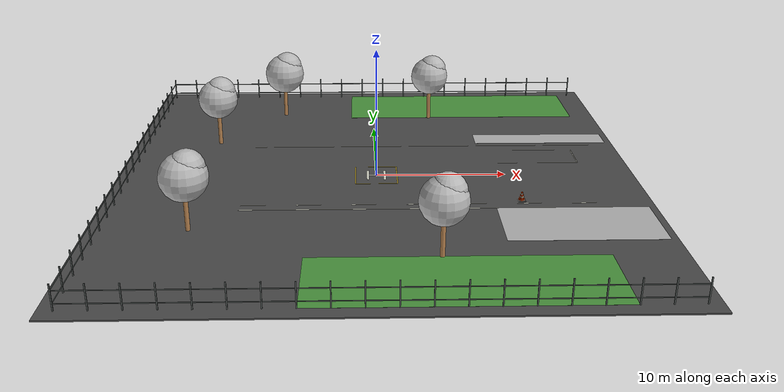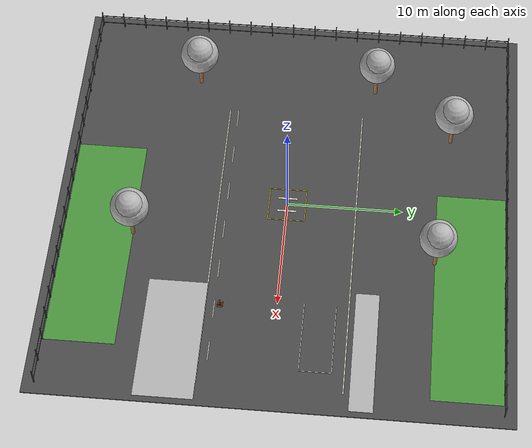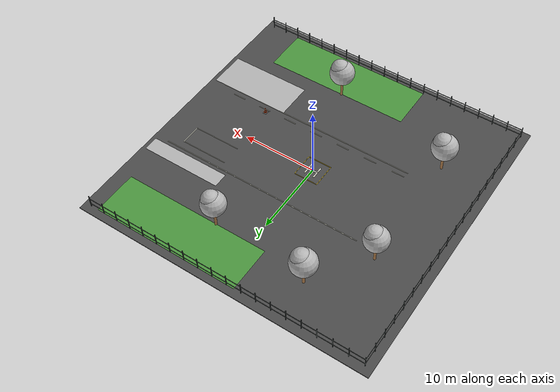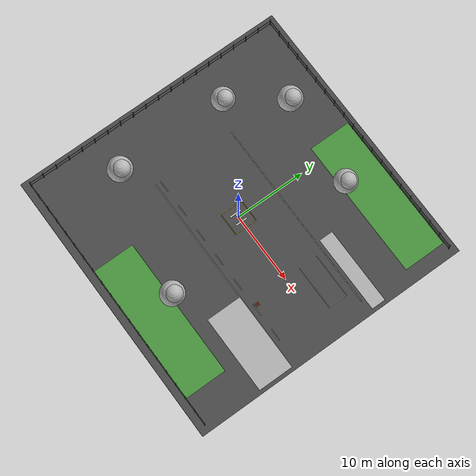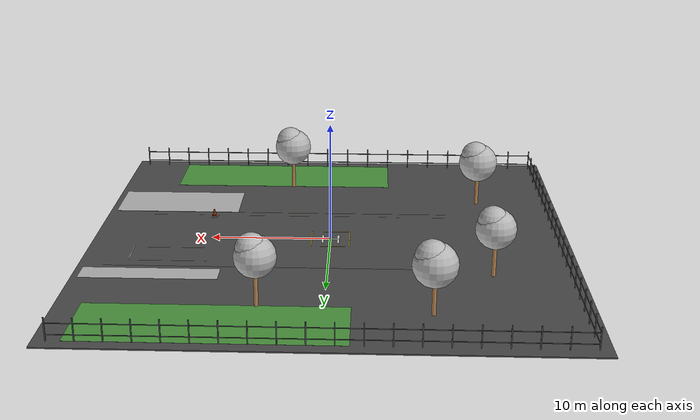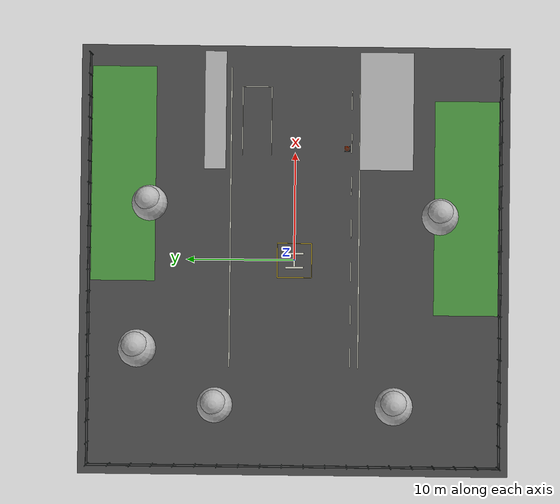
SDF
<sdf version="1.5">
 <world name="default">
  <include><uri>model://sun</uri></include>
  <model name="yard_ground">
   <static>true</static>
   <link name="structure">
    <visual name="solid_ground">
     <pose>0 0 -0.047 0 0 0</pose>
     <geometry><box><size>40 40 0.1</size></box></geometry>
     <material>
      <script>
       <uri>file:///home/fxxk/px4_agent/scene/materials/scripts</uri>
       <uri>file:///home/fxxk/px4_agent/scene/materials/textures</uri>
       <name>Yard/asphalt</name>
      </script>
     </material>
    </visual>
    <collision name="solid_ground_collision">
     <pose>0 0 -0.047 0 0 0</pose>
     <geometry><box><size>40 40 0.1</size></box></geometry>
     <surface><friction><ode><mu>1.0</mu><mu2>1.0</mu2></ode></friction></surface>
    </collision>
    <visual name="west_lawn">
     <pose>-12.5 0 0.0032 0 0 0</pose>
     <geometry><plane><normal>0 0 1</normal><size>15 38</size></plane></geometry>
     <cast_shadows>false</cast_shadows>
     <material>
      <script>
       <uri>file:///home/fxxk/px4_agent/scene/materials/scripts</uri>
       <uri>file:///home/fxxk/px4_agent/scene/materials/textures</uri>
       <name>Yard/grass</name>
      </script>
     </material>
    </visual>
    <visual name="north_lawn">
     <pose>8 16 0.0032 0 0 0</pose>
     <geometry><plane><normal>0 0 1</normal><size>20 6</size></plane></geometry>
     <cast_shadows>false</cast_shadows>
     <material>
      <script>
       <uri>file:///home/fxxk/px4_agent/scene/materials/scripts</uri>
       <uri>file:///home/fxxk/px4_agent/scene/materials/textures</uri>
       <name>Yard/grass</name>
      </script>
     </material>
    </visual>
    <visual name="south_lawn">
     <pose>5 -16 0.0032 0 0 0</pose>
     <geometry><plane><normal>0 0 1</normal><size>20 6</size></plane></geometry>
     <cast_shadows>false</cast_shadows>
     <material>
      <script>
       <uri>file:///home/fxxk/px4_agent/scene/materials/scripts</uri>
       <uri>file:///home/fxxk/px4_agent/scene/materials/textures</uri>
       <name>Yard/grass</name>
      </script>
     </material>
    </visual>
    <visual name="warehouse_apron">
     <pose>14 -8.5 0.0032 0 0 0</pose>
     <geometry><plane><normal>0 0 1</normal><size>11 5</size></plane></geometry>
     <cast_shadows>false</cast_shadows>
     <material>
      <script>
       <uri>file:///home/fxxk/px4_agent/scene/materials/scripts</uri>
       <uri>file:///home/fxxk/px4_agent/scene/materials/textures</uri>
       <name>Yard/concrete</name>
      </script>
     </material>
    </visual>
    <visual name="office_walkway">
     <pose>14 7.5 0.0032 0 0 0</pose>
     <geometry><plane><normal>0 0 1</normal><size>11 2</size></plane></geometry>
     <cast_shadows>false</cast_shadows>
     <material>
      <script>
       <uri>file:///home/fxxk/px4_agent/scene/materials/scripts</uri>
       <uri>file:///home/fxxk/px4_agent/scene/materials/textures</uri>
       <name>Yard/concrete</name>
      </script>
     </material>
    </visual>
    <visual name="road_edge_0">
     <pose>4 -6 0.0033 0 0 0</pose>
     <geometry><box><size>28 0.1 0.0001</size></box></geometry>
     <cast_shadows>false</cast_shadows>
     <material>
      <ambient>0.85 0.85 0.79 1</ambient>
      <diffuse>0.85 0.85 0.79 1</diffuse>
      <specular>0.04 0.04 0.04 1</specular>
     </material>
    </visual>
    <visual name="road_edge_1">
     <pose>4 6 0.0033 0 0 0</pose>
     <geometry><box><size>28 0.1 0.0001</size></box></geometry>
     <cast_shadows>false</cast_shadows>
     <material>
      <ambient>0.85 0.85 0.79 1</ambient>
      <diffuse>0.85 0.85 0.79 1</diffuse>
      <specular>0.04 0.04 0.04 1</specular>
     </material>
    </visual>
    <visual name="lane_dash_0">
     <pose>-9 -5.25 0.0033 0 0 0</pose>
     <geometry><box><size>1.8 0.09 0.0001</size></box></geometry>
     <cast_shadows>false</cast_shadows>
     <material>
      <ambient>0.85 0.85 0.79 1</ambient>
      <diffuse>0.85 0.85 0.79 1</diffuse>
      <specular>0.04 0.04 0.04 1</specular>
     </material>
    </visual>
    <visual name="lane_dash_1">
     <pose>-5 -5.25 0.0033 0 0 0</pose>
     <geometry><box><size>1.8 0.09 0.0001</size></box></geometry>
     <cast_shadows>false</cast_shadows>
     <material>
      <ambient>0.85 0.85 0.79 1</ambient>
      <diffuse>0.85 0.85 0.79 1</diffuse>
      <specular>0.04 0.04 0.04 1</specular>
     </material>
    </visual>
    <visual name="lane_dash_2">
     <pose>-1 -5.25 0.0033 0 0 0</pose>
     <geometry><box><size>1.8 0.09 0.0001</size></box></geometry>
     <cast_shadows>false</cast_shadows>
     <material>
      <ambient>0.85 0.85 0.79 1</ambient>
      <diffuse>0.85 0.85 0.79 1</diffuse>
      <specular>0.04 0.04 0.04 1</specular>
     </material>
    </visual>
    <visual name="lane_dash_3">
     <pose>3 -5.25 0.0033 0 0 0</pose>
     <geometry><box><size>1.8 0.09 0.0001</size></box></geometry>
     <cast_shadows>false</cast_shadows>
     <material>
      <ambient>0.85 0.85 0.79 1</ambient>
      <diffuse>0.85 0.85 0.79 1</diffuse>
      <specular>0.04 0.04 0.04 1</specular>
     </material>
    </visual>
    <visual name="lane_dash_4">
     <pose>7 -5.25 0.0033 0 0 0</pose>
     <geometry><box><size>1.8 0.09 0.0001</size></box></geometry>
     <cast_shadows>false</cast_shadows>
     <material>
      <ambient>0.85 0.85 0.79 1</ambient>
      <diffuse>0.85 0.85 0.79 1</diffuse>
      <specular>0.04 0.04 0.04 1</specular>
     </material>
    </visual>
    <visual name="lane_dash_5">
     <pose>11 -5.25 0.0033 0 0 0</pose>
     <geometry><box><size>1.8 0.09 0.0001</size></box></geometry>
     <cast_shadows>false</cast_shadows>
     <material>
      <ambient>0.85 0.85 0.79 1</ambient>
      <diffuse>0.85 0.85 0.79 1</diffuse>
      <specular>0.04 0.04 0.04 1</specular>
     </material>
    </visual>
    <visual name="lane_dash_6">
     <pose>15 -5.25 0.0033 0 0 0</pose>
     <geometry><box><size>1.8 0.09 0.0001</size></box></geometry>
     <cast_shadows>false</cast_shadows>
     <material>
      <ambient>0.85 0.85 0.79 1</ambient>
      <diffuse>0.85 0.85 0.79 1</diffuse>
      <specular>0.04 0.04 0.04 1</specular>
     </material>
    </visual>
    <visual name="parking_line_0">
     <pose>13 2.25 0.0033 0 0 0</pose>
     <geometry><box><size>6.4 0.07 0.0001</size></box></geometry>
     <cast_shadows>false</cast_shadows>
     <material>
      <ambient>0.85 0.85 0.79 1</ambient>
      <diffuse>0.85 0.85 0.79 1</diffuse>
      <specular>0.04 0.04 0.04 1</specular>
     </material>
    </visual>
    <visual name="parking_line_1">
     <pose>13 4.95 0.0033 0 0 0</pose>
     <geometry><box><size>6.4 0.07 0.0001</size></box></geometry>
     <cast_shadows>false</cast_shadows>
     <material>
      <ambient>0.85 0.85 0.79 1</ambient>
      <diffuse>0.85 0.85 0.79 1</diffuse>
      <specular>0.04 0.04 0.04 1</specular>
     </material>
    </visual>
    <visual name="parking_back">
     <pose>16.2 3.6 0.0033 0 0 0</pose>
     <geometry><box><size>0.07 2.77 0.0001</size></box></geometry>
     <cast_shadows>false</cast_shadows>
     <material>
      <ambient>0.85 0.85 0.79 1</ambient>
      <diffuse>0.85 0.85 0.79 1</diffuse>
      <specular>0.04 0.04 0.04 1</specular>
     </material>
    </visual>
    <visual name="h_left">
     <pose>-0.65 0 0.0033 0 0 0</pose>
     <geometry><box><size>0.18 1.7 0.0001</size></box></geometry>
     <cast_shadows>false</cast_shadows>
     <material>
      <ambient>0.85 0.85 0.79 1</ambient>
      <diffuse>0.85 0.85 0.79 1</diffuse>
      <specular>0.04 0.04 0.04 1</specular>
     </material>
    </visual>
    <visual name="h_right">
     <pose>0.65 0 0.0033 0 0 0</pose>
     <geometry><box><size>0.18 1.7 0.0001</size></box></geometry>
     <cast_shadows>false</cast_shadows>
     <material>
      <ambient>0.85 0.85 0.79 1</ambient>
      <diffuse>0.85 0.85 0.79 1</diffuse>
      <specular>0.04 0.04 0.04 1</specular>
     </material>
    </visual>
    <visual name="h_middle">
     <pose>0 0 0.0033 0 0 0</pose>
     <geometry><box><size>1.4 0.18 0.0001</size></box></geometry>
     <cast_shadows>false</cast_shadows>
     <material>
      <ambient>0.85 0.85 0.79 1</ambient>
      <diffuse>0.85 0.85 0.79 1</diffuse>
      <specular>0.04 0.04 0.04 1</specular>
     </material>
    </visual>
    <visual name="pad_border_0">
     <pose>0 -1.6 0.0033 0 0 0</pose>
     <geometry><box><size>3.2 0.08 0.0001</size></box></geometry>
     <cast_shadows>false</cast_shadows>
     <material>
      <ambient>0.82 0.7 0.18 1</ambient>
      <diffuse>0.82 0.7 0.18 1</diffuse>
      <specular>0.04 0.04 0.04 1</specular>
     </material>
    </visual>
    <visual name="pad_border_1">
     <pose>0 1.6 0.0033 0 0 0</pose>
     <geometry><box><size>3.2 0.08 0.0001</size></box></geometry>
     <cast_shadows>false</cast_shadows>
     <material>
      <ambient>0.82 0.7 0.18 1</ambient>
      <diffuse>0.82 0.7 0.18 1</diffuse>
      <specular>0.04 0.04 0.04 1</specular>
     </material>
    </visual>
    <visual name="pad_border_2">
     <pose>-1.6 0 0.0033 0 0 0</pose>
     <geometry><box><size>0.08 3.2 0.0001</size></box></geometry>
     <cast_shadows>false</cast_shadows>
     <material>
      <ambient>0.82 0.7 0.18 1</ambient>
      <diffuse>0.82 0.7 0.18 1</diffuse>
      <specular>0.04 0.04 0.04 1</specular>
     </material>
    </visual>
    <visual name="pad_border_3">
     <pose>1.6 0 0.0033 0 0 0</pose>
     <geometry><box><size>0.08 3.2 0.0001</size></box></geometry>
     <cast_shadows>false</cast_shadows>
     <material>
      <ambient>0.82 0.7 0.18 1</ambient>
      <diffuse>0.82 0.7 0.18 1</diffuse>
      <specular>0.04 0.04 0.04 1</specular>
     </material>
    </visual>
   </link>
  </model>
  <model name="traffic_cone_1">
   <static>true</static>
   <pose>10.5 -4.8 0.003 0 0 0</pose>
   <link name="structure">
    <visual name="rubber_base">
     <pose>0 0 0.0325 0 0 0</pose>
     <geometry><box><size>0.54 0.54 0.065</size></box></geometry>
     <material>
      <ambient>0.07 0.07 0.065 1</ambient>
      <diffuse>0.07 0.07 0.065 1</diffuse>
      <specular>0.04 0.04 0.04 1</specular>
     </material>
    </visual>
    <collision name="rubber_base_collision">
     <pose>0 0 0.0325 0 0 0</pose>
     <geometry><box><size>0.54 0.54 0.065</size></box></geometry>
     <surface><friction><ode><mu>1.0</mu><mu2>1.0</mu2></ode></friction></surface>
    </collision>
    <visual name="cone_slice_0">
     <pose>0 0 0.09 0 0 0</pose>
     <geometry><cylinder><radius>0.225</radius><length>0.056</length></cylinder></geometry>
     <material>
      <ambient>0.92 0.25 0.025 1</ambient>
      <diffuse>0.92 0.25 0.025 1</diffuse>
      <specular>0.04 0.04 0.04 1</specular>
     </material>
    </visual>
    <visual name="cone_slice_1">
     <pose>0 0 0.143 0 0 0</pose>
     <geometry><cylinder><radius>0.20900000000000002</radius><length>0.056</length></cylinder></geometry>
     <material>
      <ambient>0.92 0.25 0.025 1</ambient>
      <diffuse>0.92 0.25 0.025 1</diffuse>
      <specular>0.04 0.04 0.04 1</specular>
     </material>
    </visual>
    <visual name="cone_slice_2">
     <pose>0 0 0.196 0 0 0</pose>
     <geometry><cylinder><radius>0.193</radius><length>0.056</length></cylinder></geometry>
     <material>
      <ambient>0.92 0.25 0.025 1</ambient>
      <diffuse>0.92 0.25 0.025 1</diffuse>
      <specular>0.04 0.04 0.04 1</specular>
     </material>
    </visual>
    <visual name="cone_slice_3">
     <pose>0 0 0.249 0 0 0</pose>
     <geometry><cylinder><radius>0.177</radius><length>0.056</length></cylinder></geometry>
     <material>
      <ambient>0.92 0.25 0.025 1</ambient>
      <diffuse>0.92 0.25 0.025 1</diffuse>
      <specular>0.04 0.04 0.04 1</specular>
     </material>
    </visual>
    <visual name="cone_slice_4">
     <pose>0 0 0.302 0 0 0</pose>
     <geometry><cylinder><radius>0.161</radius><length>0.056</length></cylinder></geometry>
     <material>
      <ambient>0.88 0.87 0.79 1</ambient>
      <diffuse>0.88 0.87 0.79 1</diffuse>
      <specular>0.04 0.04 0.04 1</specular>
     </material>
    </visual>
    <visual name="cone_slice_5">
     <pose>0 0 0.355 0 0 0</pose>
     <geometry><cylinder><radius>0.14500000000000002</radius><length>0.056</length></cylinder></geometry>
     <material>
      <ambient>0.88 0.87 0.79 1</ambient>
      <diffuse>0.88 0.87 0.79 1</diffuse>
      <specular>0.04 0.04 0.04 1</specular>
     </material>
    </visual>
    <visual name="cone_slice_6">
     <pose>0 0 0.408 0 0 0</pose>
     <geometry><cylinder><radius>0.129</radius><length>0.056</length></cylinder></geometry>
     <material>
      <ambient>0.92 0.25 0.025 1</ambient>
      <diffuse>0.92 0.25 0.025 1</diffuse>
      <specular>0.04 0.04 0.04 1</specular>
     </material>
    </visual>
    <visual name="cone_slice_7">
     <pose>0 0 0.461 0 0 0</pose>
     <geometry><cylinder><radius>0.113</radius><length>0.056</length></cylinder></geometry>
     <material>
      <ambient>0.92 0.25 0.025 1</ambient>
      <diffuse>0.92 0.25 0.025 1</diffuse>
      <specular>0.04 0.04 0.04 1</specular>
     </material>
    </visual>
    <visual name="cone_slice_8">
     <pose>0 0 0.514 0 0 0</pose>
     <geometry><cylinder><radius>0.097</radius><length>0.056</length></cylinder></geometry>
     <material>
      <ambient>0.88 0.87 0.79 1</ambient>
      <diffuse>0.88 0.87 0.79 1</diffuse>
      <specular>0.04 0.04 0.04 1</specular>
     </material>
    </visual>
    <visual name="cone_slice_9">
     <pose>0 0 0.567 0 0 0</pose>
     <geometry><cylinder><radius>0.08099999999999999</radius><length>0.056</length></cylinder></geometry>
     <material>
      <ambient>0.88 0.87 0.79 1</ambient>
      <diffuse>0.88 0.87 0.79 1</diffuse>
      <specular>0.04 0.04 0.04 1</specular>
     </material>
    </visual>
    <visual name="cone_slice_10">
     <pose>0 0 0.62 0 0 0</pose>
     <geometry><cylinder><radius>0.065</radius><length>0.056</length></cylinder></geometry>
     <material>
      <ambient>0.92 0.25 0.025 1</ambient>
      <diffuse>0.92 0.25 0.025 1</diffuse>
      <specular>0.04 0.04 0.04 1</specular>
     </material>
    </visual>
    <visual name="cone_slice_11">
     <pose>0 0 0.673 0 0 0</pose>
     <geometry><cylinder><radius>0.049000000000000016</radius><length>0.056</length></cylinder></geometry>
     <material>
      <ambient>0.92 0.25 0.025 1</ambient>
      <diffuse>0.92 0.25 0.025 1</diffuse>
      <specular>0.04 0.04 0.04 1</specular>
     </material>
    </visual>
    <collision name="cone_body_collision">
     <pose>0 0 .39 0 0 0</pose>
     <geometry><cylinder><radius>0.23</radius><length>0.73</length></cylinder></geometry>
    </collision>
   </link>
  </model>
  <model name="yard_tree_1">
   <static>true</static>
   <pose>-13 -9 0.003 0 0 0</pose>
   <link name="structure">
    <visual name="trunk">
     <pose>0 0 1.6 0 0 0</pose>
     <geometry><cylinder><radius>0.16</radius><length>3.2</length></cylinder></geometry>
     <material>
      <script>
       <uri>file:///home/fxxk/px4_agent/scene/materials/scripts</uri>
       <uri>file:///home/fxxk/px4_agent/scene/materials/textures</uri>
       <name>Yard/wood</name>
      </script>
     </material>
    </visual>
    <collision name="trunk_collision">
     <pose>0 0 1.6 0 0 0</pose>
     <geometry><cylinder><radius>0.16</radius><length>3.2</length></cylinder></geometry>
     <surface><friction><ode><mu>1.0</mu><mu2>1.0</mu2></ode></friction></surface>
    </collision>
    <visual name="crown">
     <pose>0 0 3.95 0 0 0</pose>
     <geometry><sphere><radius>1.7</radius></sphere></geometry>
     <material>
      <script>
       <uri>file:///home/fxxk/px4_agent/scene/materials/scripts</uri>
       <uri>file:///home/fxxk/px4_agent/scene/materials/textures</uri>
       <name>Yard/foliage</name>
      </script>
     </material>
    </visual>
    <collision name="crown_collision">
     <pose>0 0 3.95 0 0 0</pose>
     <geometry><sphere><radius>1.7</radius></sphere></geometry>
     <surface><friction><ode><mu>1.0</mu><mu2>1.0</mu2></ode></friction></surface>
    </collision>
    <visual name="crown_top">
     <pose>0.25 0.06 4.6 0 0 0</pose>
     <geometry><sphere><radius>1.275</radius></sphere></geometry>
     <material>
      <script>
       <uri>file:///home/fxxk/px4_agent/scene/materials/scripts</uri>
       <uri>file:///home/fxxk/px4_agent/scene/materials/textures</uri>
       <name>Yard/foliage</name>
      </script>
     </material>
    </visual>
   </link>
  </model>
  <model name="yard_tree_2">
   <static>true</static>
   <pose>-13 7 0.003 0 0 0</pose>
   <link name="structure">
    <visual name="trunk">
     <pose>0 0 1.6 0 0 0</pose>
     <geometry><cylinder><radius>0.16</radius><length>3.2</length></cylinder></geometry>
     <material>
      <script>
       <uri>file:///home/fxxk/px4_agent/scene/materials/scripts</uri>
       <uri>file:///home/fxxk/px4_agent/scene/materials/textures</uri>
       <name>Yard/wood</name>
      </script>
     </material>
    </visual>
    <collision name="trunk_collision">
     <pose>0 0 1.6 0 0 0</pose>
     <geometry><cylinder><radius>0.16</radius><length>3.2</length></cylinder></geometry>
     <surface><friction><ode><mu>1.0</mu><mu2>1.0</mu2></ode></friction></surface>
    </collision>
    <visual name="crown">
     <pose>0 0 3.95 0 0 0</pose>
     <geometry><sphere><radius>1.6</radius></sphere></geometry>
     <material>
      <script>
       <uri>file:///home/fxxk/px4_agent/scene/materials/scripts</uri>
       <uri>file:///home/fxxk/px4_agent/scene/materials/textures</uri>
       <name>Yard/foliage</name>
      </script>
     </material>
    </visual>
    <collision name="crown_collision">
     <pose>0 0 3.95 0 0 0</pose>
     <geometry><sphere><radius>1.6</radius></sphere></geometry>
     <surface><friction><ode><mu>1.0</mu><mu2>1.0</mu2></ode></friction></surface>
    </collision>
    <visual name="crown_top">
     <pose>0.25 0.06 4.6 0 0 0</pose>
     <geometry><sphere><radius>1.2000000000000002</radius></sphere></geometry>
     <material>
      <script>
       <uri>file:///home/fxxk/px4_agent/scene/materials/scripts</uri>
       <uri>file:///home/fxxk/px4_agent/scene/materials/textures</uri>
       <name>Yard/foliage</name>
      </script>
     </material>
    </visual>
   </link>
  </model>
  <model name="yard_tree_3">
   <static>true</static>
   <pose>-8 14 0.003 0 0 0</pose>
   <link name="structure">
    <visual name="trunk">
     <pose>0 0 1.6 0 0 0</pose>
     <geometry><cylinder><radius>0.16</radius><length>3.2</length></cylinder></geometry>
     <material>
      <script>
       <uri>file:///home/fxxk/px4_agent/scene/materials/scripts</uri>
       <uri>file:///home/fxxk/px4_agent/scene/materials/textures</uri>
       <name>Yard/wood</name>
      </script>
     </material>
    </visual>
    <collision name="trunk_collision">
     <pose>0 0 1.6 0 0 0</pose>
     <geometry><cylinder><radius>0.16</radius><length>3.2</length></cylinder></geometry>
     <surface><friction><ode><mu>1.0</mu><mu2>1.0</mu2></ode></friction></surface>
    </collision>
    <visual name="crown">
     <pose>0 0 3.95 0 0 0</pose>
     <geometry><sphere><radius>1.7</radius></sphere></geometry>
     <material>
      <script>
       <uri>file:///home/fxxk/px4_agent/scene/materials/scripts</uri>
       <uri>file:///home/fxxk/px4_agent/scene/materials/textures</uri>
       <name>Yard/foliage</name>
      </script>
     </material>
    </visual>
    <collision name="crown_collision">
     <pose>0 0 3.95 0 0 0</pose>
     <geometry><sphere><radius>1.7</radius></sphere></geometry>
     <surface><friction><ode><mu>1.0</mu><mu2>1.0</mu2></ode></friction></surface>
    </collision>
    <visual name="crown_top">
     <pose>0.25 0.06 4.6 0 0 0</pose>
     <geometry><sphere><radius>1.275</radius></sphere></geometry>
     <material>
      <script>
       <uri>file:///home/fxxk/px4_agent/scene/materials/scripts</uri>
       <uri>file:///home/fxxk/px4_agent/scene/materials/textures</uri>
       <name>Yard/foliage</name>
      </script>
     </material>
    </visual>
   </link>
  </model>
  <model name="yard_tree_4">
   <static>true</static>
   <pose>5 13 0.003 0 0 0</pose>
   <link name="structure">
    <visual name="trunk">
     <pose>0 0 1.6 0 0 0</pose>
     <geometry><cylinder><radius>0.16</radius><length>3.2</length></cylinder></geometry>
     <material>
      <script>
       <uri>file:///home/fxxk/px4_agent/scene/materials/scripts</uri>
       <uri>file:///home/fxxk/px4_agent/scene/materials/textures</uri>
       <name>Yard/wood</name>
      </script>
     </material>
    </visual>
    <collision name="trunk_collision">
     <pose>0 0 1.6 0 0 0</pose>
     <geometry><cylinder><radius>0.16</radius><length>3.2</length></cylinder></geometry>
     <surface><friction><ode><mu>1.0</mu><mu2>1.0</mu2></ode></friction></surface>
    </collision>
    <visual name="crown">
     <pose>0 0 3.95 0 0 0</pose>
     <geometry><sphere><radius>1.6</radius></sphere></geometry>
     <material>
      <script>
       <uri>file:///home/fxxk/px4_agent/scene/materials/scripts</uri>
       <uri>file:///home/fxxk/px4_agent/scene/materials/textures</uri>
       <name>Yard/foliage</name>
      </script>
     </material>
    </visual>
    <collision name="crown_collision">
     <pose>0 0 3.95 0 0 0</pose>
     <geometry><sphere><radius>1.6</radius></sphere></geometry>
     <surface><friction><ode><mu>1.0</mu><mu2>1.0</mu2></ode></friction></surface>
    </collision>
    <visual name="crown_top">
     <pose>0.25 0.06 4.6 0 0 0</pose>
     <geometry><sphere><radius>1.2000000000000002</radius></sphere></geometry>
     <material>
      <script>
       <uri>file:///home/fxxk/px4_agent/scene/materials/scripts</uri>
       <uri>file:///home/fxxk/px4_agent/scene/materials/textures</uri>
       <name>Yard/foliage</name>
      </script>
     </material>
    </visual>
   </link>
  </model>
  <model name="yard_tree_5">
   <static>true</static>
   <pose>4 -13 0.003 0 0 0</pose>
   <link name="structure">
    <visual name="trunk">
     <pose>0 0 1.6 0 0 0</pose>
     <geometry><cylinder><radius>0.16</radius><length>3.2</length></cylinder></geometry>
     <material>
      <script>
       <uri>file:///home/fxxk/px4_agent/scene/materials/scripts</uri>
       <uri>file:///home/fxxk/px4_agent/scene/materials/textures</uri>
       <name>Yard/wood</name>
      </script>
     </material>
    </visual>
    <collision name="trunk_collision">
     <pose>0 0 1.6 0 0 0</pose>
     <geometry><cylinder><radius>0.16</radius><length>3.2</length></cylinder></geometry>
     <surface><friction><ode><mu>1.0</mu><mu2>1.0</mu2></ode></friction></surface>
    </collision>
    <visual name="crown">
     <pose>0 0 3.95 0 0 0</pose>
     <geometry><sphere><radius>1.65</radius></sphere></geometry>
     <material>
      <script>
       <uri>file:///home/fxxk/px4_agent/scene/materials/scripts</uri>
       <uri>file:///home/fxxk/px4_agent/scene/materials/textures</uri>
       <name>Yard/foliage</name>
      </script>
     </material>
    </visual>
    <collision name="crown_collision">
     <pose>0 0 3.95 0 0 0</pose>
     <geometry><sphere><radius>1.65</radius></sphere></geometry>
     <surface><friction><ode><mu>1.0</mu><mu2>1.0</mu2></ode></friction></surface>
    </collision>
    <visual name="crown_top">
     <pose>0.25 0.06 4.6 0 0 0</pose>
     <geometry><sphere><radius>1.2374999999999998</radius></sphere></geometry>
     <material>
      <script>
       <uri>file:///home/fxxk/px4_agent/scene/materials/scripts</uri>
       <uri>file:///home/fxxk/px4_agent/scene/materials/textures</uri>
       <name>Yard/foliage</name>
      </script>
     </material>
    </visual>
   </link>
  </model>
  <model name="north_fence">
   <static>true</static>
   <pose>0 19 0.003 0 0 0</pose>
   <link name="structure">
    <collision name="fence_collision">
     <pose>0 0 .9 0 0 0</pose>
     <geometry><box><size>38 0.12 1.8</size></box></geometry>
    </collision>
    <visual name="fence_post_0">
     <pose>-19 0 0.9 0 0 0</pose>
     <geometry><box><size>0.08 0.08 1.8</size></box></geometry>
     <material>
      <ambient>0.31 0.34 0.33 1</ambient>
      <diffuse>0.31 0.34 0.33 1</diffuse>
      <specular>0.04 0.04 0.04 1</specular>
     </material>
    </visual>
    <visual name="fence_post_1">
     <pose>-17 0 0.9 0 0 0</pose>
     <geometry><box><size>0.08 0.08 1.8</size></box></geometry>
     <material>
      <ambient>0.31 0.34 0.33 1</ambient>
      <diffuse>0.31 0.34 0.33 1</diffuse>
      <specular>0.04 0.04 0.04 1</specular>
     </material>
    </visual>
    <visual name="fence_post_2">
     <pose>-15 0 0.9 0 0 0</pose>
     <geometry><box><size>0.08 0.08 1.8</size></box></geometry>
     <material>
      <ambient>0.31 0.34 0.33 1</ambient>
      <diffuse>0.31 0.34 0.33 1</diffuse>
      <specular>0.04 0.04 0.04 1</specular>
     </material>
    </visual>
    <visual name="fence_post_3">
     <pose>-13 0 0.9 0 0 0</pose>
     <geometry><box><size>0.08 0.08 1.8</size></box></geometry>
     <material>
      <ambient>0.31 0.34 0.33 1</ambient>
      <diffuse>0.31 0.34 0.33 1</diffuse>
      <specular>0.04 0.04 0.04 1</specular>
     </material>
    </visual>
    <visual name="fence_post_4">
     <pose>-11 0 0.9 0 0 0</pose>
     <geometry><box><size>0.08 0.08 1.8</size></box></geometry>
     <material>
      <ambient>0.31 0.34 0.33 1</ambient>
      <diffuse>0.31 0.34 0.33 1</diffuse>
      <specular>0.04 0.04 0.04 1</specular>
     </material>
    </visual>
    <visual name="fence_post_5">
     <pose>-9 0 0.9 0 0 0</pose>
     <geometry><box><size>0.08 0.08 1.8</size></box></geometry>
     <material>
      <ambient>0.31 0.34 0.33 1</ambient>
      <diffuse>0.31 0.34 0.33 1</diffuse>
      <specular>0.04 0.04 0.04 1</specular>
     </material>
    </visual>
    <visual name="fence_post_6">
     <pose>-7 0 0.9 0 0 0</pose>
     <geometry><box><size>0.08 0.08 1.8</size></box></geometry>
     <material>
      <ambient>0.31 0.34 0.33 1</ambient>
      <diffuse>0.31 0.34 0.33 1</diffuse>
      <specular>0.04 0.04 0.04 1</specular>
     </material>
    </visual>
    <visual name="fence_post_7">
     <pose>-5 0 0.9 0 0 0</pose>
     <geometry><box><size>0.08 0.08 1.8</size></box></geometry>
     <material>
      <ambient>0.31 0.34 0.33 1</ambient>
      <diffuse>0.31 0.34 0.33 1</diffuse>
      <specular>0.04 0.04 0.04 1</specular>
     </material>
    </visual>
    <visual name="fence_post_8">
     <pose>-3 0 0.9 0 0 0</pose>
     <geometry><box><size>0.08 0.08 1.8</size></box></geometry>
     <material>
      <ambient>0.31 0.34 0.33 1</ambient>
      <diffuse>0.31 0.34 0.33 1</diffuse>
      <specular>0.04 0.04 0.04 1</specular>
     </material>
    </visual>
    <visual name="fence_post_9">
     <pose>-1 0 0.9 0 0 0</pose>
     <geometry><box><size>0.08 0.08 1.8</size></box></geometry>
     <material>
      <ambient>0.31 0.34 0.33 1</ambient>
      <diffuse>0.31 0.34 0.33 1</diffuse>
      <specular>0.04 0.04 0.04 1</specular>
     </material>
    </visual>
    <visual name="fence_post_10">
     <pose>1 0 0.9 0 0 0</pose>
     <geometry><box><size>0.08 0.08 1.8</size></box></geometry>
     <material>
      <ambient>0.31 0.34 0.33 1</ambient>
      <diffuse>0.31 0.34 0.33 1</diffuse>
      <specular>0.04 0.04 0.04 1</specular>
     </material>
    </visual>
    <visual name="fence_post_11">
     <pose>3 0 0.9 0 0 0</pose>
     <geometry><box><size>0.08 0.08 1.8</size></box></geometry>
     <material>
      <ambient>0.31 0.34 0.33 1</ambient>
      <diffuse>0.31 0.34 0.33 1</diffuse>
      <specular>0.04 0.04 0.04 1</specular>
     </material>
    </visual>
    <visual name="fence_post_12">
     <pose>5 0 0.9 0 0 0</pose>
     <geometry><box><size>0.08 0.08 1.8</size></box></geometry>
     <material>
      <ambient>0.31 0.34 0.33 1</ambient>
      <diffuse>0.31 0.34 0.33 1</diffuse>
      <specular>0.04 0.04 0.04 1</specular>
     </material>
    </visual>
    <visual name="fence_post_13">
     <pose>7 0 0.9 0 0 0</pose>
     <geometry><box><size>0.08 0.08 1.8</size></box></geometry>
     <material>
      <ambient>0.31 0.34 0.33 1</ambient>
      <diffuse>0.31 0.34 0.33 1</diffuse>
      <specular>0.04 0.04 0.04 1</specular>
     </material>
    </visual>
    <visual name="fence_post_14">
     <pose>9 0 0.9 0 0 0</pose>
     <geometry><box><size>0.08 0.08 1.8</size></box></geometry>
     <material>
      <ambient>0.31 0.34 0.33 1</ambient>
      <diffuse>0.31 0.34 0.33 1</diffuse>
      <specular>0.04 0.04 0.04 1</specular>
     </material>
    </visual>
    <visual name="fence_post_15">
     <pose>11 0 0.9 0 0 0</pose>
     <geometry><box><size>0.08 0.08 1.8</size></box></geometry>
     <material>
      <ambient>0.31 0.34 0.33 1</ambient>
      <diffuse>0.31 0.34 0.33 1</diffuse>
      <specular>0.04 0.04 0.04 1</specular>
     </material>
    </visual>
    <visual name="fence_post_16">
     <pose>13 0 0.9 0 0 0</pose>
     <geometry><box><size>0.08 0.08 1.8</size></box></geometry>
     <material>
      <ambient>0.31 0.34 0.33 1</ambient>
      <diffuse>0.31 0.34 0.33 1</diffuse>
      <specular>0.04 0.04 0.04 1</specular>
     </material>
    </visual>
    <visual name="fence_post_17">
     <pose>15 0 0.9 0 0 0</pose>
     <geometry><box><size>0.08 0.08 1.8</size></box></geometry>
     <material>
      <ambient>0.31 0.34 0.33 1</ambient>
      <diffuse>0.31 0.34 0.33 1</diffuse>
      <specular>0.04 0.04 0.04 1</specular>
     </material>
    </visual>
    <visual name="fence_post_18">
     <pose>17 0 0.9 0 0 0</pose>
     <geometry><box><size>0.08 0.08 1.8</size></box></geometry>
     <material>
      <ambient>0.31 0.34 0.33 1</ambient>
      <diffuse>0.31 0.34 0.33 1</diffuse>
      <specular>0.04 0.04 0.04 1</specular>
     </material>
    </visual>
    <visual name="fence_post_19">
     <pose>19 0 0.9 0 0 0</pose>
     <geometry><box><size>0.08 0.08 1.8</size></box></geometry>
     <material>
      <ambient>0.31 0.34 0.33 1</ambient>
      <diffuse>0.31 0.34 0.33 1</diffuse>
      <specular>0.04 0.04 0.04 1</specular>
     </material>
    </visual>
    <visual name="fence_rail_0">
     <pose>0 0 0.48 0 0 0</pose>
     <geometry><box><size>38 0.04 0.055</size></box></geometry>
     <material>
      <ambient>0.35 0.38 0.37 1</ambient>
      <diffuse>0.35 0.38 0.37 1</diffuse>
      <specular>0.04 0.04 0.04 1</specular>
     </material>
    </visual>
    <visual name="fence_rail_1">
     <pose>0 0 1.35 0 0 0</pose>
     <geometry><box><size>38 0.04 0.055</size></box></geometry>
     <material>
      <ambient>0.35 0.38 0.37 1</ambient>
      <diffuse>0.35 0.38 0.37 1</diffuse>
      <specular>0.04 0.04 0.04 1</specular>
     </material>
    </visual>
   </link>
  </model>
  <model name="south_fence">
   <static>true</static>
   <pose>0 -19 0.003 0 0 0</pose>
   <link name="structure">
    <collision name="fence_collision">
     <pose>0 0 .9 0 0 0</pose>
     <geometry><box><size>38 0.12 1.8</size></box></geometry>
    </collision>
    <visual name="fence_post_0">
     <pose>-19 0 0.9 0 0 0</pose>
     <geometry><box><size>0.08 0.08 1.8</size></box></geometry>
     <material>
      <ambient>0.31 0.34 0.33 1</ambient>
      <diffuse>0.31 0.34 0.33 1</diffuse>
      <specular>0.04 0.04 0.04 1</specular>
     </material>
    </visual>
    <visual name="fence_post_1">
     <pose>-17 0 0.9 0 0 0</pose>
     <geometry><box><size>0.08 0.08 1.8</size></box></geometry>
     <material>
      <ambient>0.31 0.34 0.33 1</ambient>
      <diffuse>0.31 0.34 0.33 1</diffuse>
      <specular>0.04 0.04 0.04 1</specular>
     </material>
    </visual>
    <visual name="fence_post_2">
     <pose>-15 0 0.9 0 0 0</pose>
     <geometry><box><size>0.08 0.08 1.8</size></box></geometry>
     <material>
      <ambient>0.31 0.34 0.33 1</ambient>
      <diffuse>0.31 0.34 0.33 1</diffuse>
      <specular>0.04 0.04 0.04 1</specular>
     </material>
    </visual>
    <visual name="fence_post_3">
     <pose>-13 0 0.9 0 0 0</pose>
     <geometry><box><size>0.08 0.08 1.8</size></box></geometry>
     <material>
      <ambient>0.31 0.34 0.33 1</ambient>
      <diffuse>0.31 0.34 0.33 1</diffuse>
      <specular>0.04 0.04 0.04 1</specular>
     </material>
    </visual>
    <visual name="fence_post_4">
     <pose>-11 0 0.9 0 0 0</pose>
     <geometry><box><size>0.08 0.08 1.8</size></box></geometry>
     <material>
      <ambient>0.31 0.34 0.33 1</ambient>
      <diffuse>0.31 0.34 0.33 1</diffuse>
      <specular>0.04 0.04 0.04 1</specular>
     </material>
    </visual>
    <visual name="fence_post_5">
     <pose>-9 0 0.9 0 0 0</pose>
     <geometry><box><size>0.08 0.08 1.8</size></box></geometry>
     <material>
      <ambient>0.31 0.34 0.33 1</ambient>
      <diffuse>0.31 0.34 0.33 1</diffuse>
      <specular>0.04 0.04 0.04 1</specular>
     </material>
    </visual>
    <visual name="fence_post_6">
     <pose>-7 0 0.9 0 0 0</pose>
     <geometry><box><size>0.08 0.08 1.8</size></box></geometry>
     <material>
      <ambient>0.31 0.34 0.33 1</ambient>
      <diffuse>0.31 0.34 0.33 1</diffuse>
      <specular>0.04 0.04 0.04 1</specular>
     </material>
    </visual>
    <visual name="fence_post_7">
     <pose>-5 0 0.9 0 0 0</pose>
     <geometry><box><size>0.08 0.08 1.8</size></box></geometry>
     <material>
      <ambient>0.31 0.34 0.33 1</ambient>
      <diffuse>0.31 0.34 0.33 1</diffuse>
      <specular>0.04 0.04 0.04 1</specular>
     </material>
    </visual>
    <visual name="fence_post_8">
     <pose>-3 0 0.9 0 0 0</pose>
     <geometry><box><size>0.08 0.08 1.8</size></box></geometry>
     <material>
      <ambient>0.31 0.34 0.33 1</ambient>
      <diffuse>0.31 0.34 0.33 1</diffuse>
      <specular>0.04 0.04 0.04 1</specular>
     </material>
    </visual>
    <visual name="fence_post_9">
     <pose>-1 0 0.9 0 0 0</pose>
     <geometry><box><size>0.08 0.08 1.8</size></box></geometry>
     <material>
      <ambient>0.31 0.34 0.33 1</ambient>
      <diffuse>0.31 0.34 0.33 1</diffuse>
      <specular>0.04 0.04 0.04 1</specular>
     </material>
    </visual>
    <visual name="fence_post_10">
     <pose>1 0 0.9 0 0 0</pose>
     <geometry><box><size>0.08 0.08 1.8</size></box></geometry>
     <material>
      <ambient>0.31 0.34 0.33 1</ambient>
      <diffuse>0.31 0.34 0.33 1</diffuse>
      <specular>0.04 0.04 0.04 1</specular>
     </material>
    </visual>
    <visual name="fence_post_11">
     <pose>3 0 0.9 0 0 0</pose>
     <geometry><box><size>0.08 0.08 1.8</size></box></geometry>
     <material>
      <ambient>0.31 0.34 0.33 1</ambient>
      <diffuse>0.31 0.34 0.33 1</diffuse>
      <specular>0.04 0.04 0.04 1</specular>
     </material>
    </visual>
    <visual name="fence_post_12">
     <pose>5 0 0.9 0 0 0</pose>
     <geometry><box><size>0.08 0.08 1.8</size></box></geometry>
     <material>
      <ambient>0.31 0.34 0.33 1</ambient>
      <diffuse>0.31 0.34 0.33 1</diffuse>
      <specular>0.04 0.04 0.04 1</specular>
     </material>
    </visual>
    <visual name="fence_post_13">
     <pose>7 0 0.9 0 0 0</pose>
     <geometry><box><size>0.08 0.08 1.8</size></box></geometry>
     <material>
      <ambient>0.31 0.34 0.33 1</ambient>
      <diffuse>0.31 0.34 0.33 1</diffuse>
      <specular>0.04 0.04 0.04 1</specular>
     </material>
    </visual>
    <visual name="fence_post_14">
     <pose>9 0 0.9 0 0 0</pose>
     <geometry><box><size>0.08 0.08 1.8</size></box></geometry>
     <material>
      <ambient>0.31 0.34 0.33 1</ambient>
      <diffuse>0.31 0.34 0.33 1</diffuse>
      <specular>0.04 0.04 0.04 1</specular>
     </material>
    </visual>
    <visual name="fence_post_15">
     <pose>11 0 0.9 0 0 0</pose>
     <geometry><box><size>0.08 0.08 1.8</size></box></geometry>
     <material>
      <ambient>0.31 0.34 0.33 1</ambient>
      <diffuse>0.31 0.34 0.33 1</diffuse>
      <specular>0.04 0.04 0.04 1</specular>
     </material>
    </visual>
    <visual name="fence_post_16">
     <pose>13 0 0.9 0 0 0</pose>
     <geometry><box><size>0.08 0.08 1.8</size></box></geometry>
     <material>
      <ambient>0.31 0.34 0.33 1</ambient>
      <diffuse>0.31 0.34 0.33 1</diffuse>
      <specular>0.04 0.04 0.04 1</specular>
     </material>
    </visual>
    <visual name="fence_post_17">
     <pose>15 0 0.9 0 0 0</pose>
     <geometry><box><size>0.08 0.08 1.8</size></box></geometry>
     <material>
      <ambient>0.31 0.34 0.33 1</ambient>
      <diffuse>0.31 0.34 0.33 1</diffuse>
      <specular>0.04 0.04 0.04 1</specular>
     </material>
    </visual>
    <visual name="fence_post_18">
     <pose>17 0 0.9 0 0 0</pose>
     <geometry><box><size>0.08 0.08 1.8</size></box></geometry>
     <material>
      <ambient>0.31 0.34 0.33 1</ambient>
      <diffuse>0.31 0.34 0.33 1</diffuse>
      <specular>0.04 0.04 0.04 1</specular>
     </material>
    </visual>
    <visual name="fence_post_19">
     <pose>19 0 0.9 0 0 0</pose>
     <geometry><box><size>0.08 0.08 1.8</size></box></geometry>
     <material>
      <ambient>0.31 0.34 0.33 1</ambient>
      <diffuse>0.31 0.34 0.33 1</diffuse>
      <specular>0.04 0.04 0.04 1</specular>
     </material>
    </visual>
    <visual name="fence_rail_0">
     <pose>0 0 0.48 0 0 0</pose>
     <geometry><box><size>38 0.04 0.055</size></box></geometry>
     <material>
      <ambient>0.35 0.38 0.37 1</ambient>
      <diffuse>0.35 0.38 0.37 1</diffuse>
      <specular>0.04 0.04 0.04 1</specular>
     </material>
    </visual>
    <visual name="fence_rail_1">
     <pose>0 0 1.35 0 0 0</pose>
     <geometry><box><size>38 0.04 0.055</size></box></geometry>
     <material>
      <ambient>0.35 0.38 0.37 1</ambient>
      <diffuse>0.35 0.38 0.37 1</diffuse>
      <specular>0.04 0.04 0.04 1</specular>
     </material>
    </visual>
   </link>
  </model>
  <model name="west_fence">
   <static>true</static>
   <pose>-19 0 0.003 0 0 0</pose>
   <link name="structure">
    <collision name="fence_collision">
     <pose>0 0 .9 0 0 0</pose>
     <geometry><box><size>0.12 38 1.8</size></box></geometry>
    </collision>
    <visual name="fence_post_0">
     <pose>0 -19 0.9 0 0 0</pose>
     <geometry><box><size>0.08 0.08 1.8</size></box></geometry>
     <material>
      <ambient>0.31 0.34 0.33 1</ambient>
      <diffuse>0.31 0.34 0.33 1</diffuse>
      <specular>0.04 0.04 0.04 1</specular>
     </material>
    </visual>
    <visual name="fence_post_1">
     <pose>0 -17 0.9 0 0 0</pose>
     <geometry><box><size>0.08 0.08 1.8</size></box></geometry>
     <material>
      <ambient>0.31 0.34 0.33 1</ambient>
      <diffuse>0.31 0.34 0.33 1</diffuse>
      <specular>0.04 0.04 0.04 1</specular>
     </material>
    </visual>
    <visual name="fence_post_2">
     <pose>0 -15 0.9 0 0 0</pose>
     <geometry><box><size>0.08 0.08 1.8</size></box></geometry>
     <material>
      <ambient>0.31 0.34 0.33 1</ambient>
      <diffuse>0.31 0.34 0.33 1</diffuse>
      <specular>0.04 0.04 0.04 1</specular>
     </material>
    </visual>
    <visual name="fence_post_3">
     <pose>0 -13 0.9 0 0 0</pose>
     <geometry><box><size>0.08 0.08 1.8</size></box></geometry>
     <material>
      <ambient>0.31 0.34 0.33 1</ambient>
      <diffuse>0.31 0.34 0.33 1</diffuse>
      <specular>0.04 0.04 0.04 1</specular>
     </material>
    </visual>
    <visual name="fence_post_4">
     <pose>0 -11 0.9 0 0 0</pose>
     <geometry><box><size>0.08 0.08 1.8</size></box></geometry>
     <material>
      <ambient>0.31 0.34 0.33 1</ambient>
      <diffuse>0.31 0.34 0.33 1</diffuse>
      <specular>0.04 0.04 0.04 1</specular>
     </material>
    </visual>
    <visual name="fence_post_5">
     <pose>0 -9 0.9 0 0 0</pose>
     <geometry><box><size>0.08 0.08 1.8</size></box></geometry>
     <material>
      <ambient>0.31 0.34 0.33 1</ambient>
      <diffuse>0.31 0.34 0.33 1</diffuse>
      <specular>0.04 0.04 0.04 1</specular>
     </material>
    </visual>
    <visual name="fence_post_6">
     <pose>0 -7 0.9 0 0 0</pose>
     <geometry><box><size>0.08 0.08 1.8</size></box></geometry>
     <material>
      <ambient>0.31 0.34 0.33 1</ambient>
      <diffuse>0.31 0.34 0.33 1</diffuse>
      <specular>0.04 0.04 0.04 1</specular>
     </material>
    </visual>
    <visual name="fence_post_7">
     <pose>0 -5 0.9 0 0 0</pose>
     <geometry><box><size>0.08 0.08 1.8</size></box></geometry>
     <material>
      <ambient>0.31 0.34 0.33 1</ambient>
      <diffuse>0.31 0.34 0.33 1</diffuse>
      <specular>0.04 0.04 0.04 1</specular>
     </material>
    </visual>
    <visual name="fence_post_8">
     <pose>0 -3 0.9 0 0 0</pose>
     <geometry><box><size>0.08 0.08 1.8</size></box></geometry>
     <material>
      <ambient>0.31 0.34 0.33 1</ambient>
      <diffuse>0.31 0.34 0.33 1</diffuse>
      <specular>0.04 0.04 0.04 1</specular>
     </material>
    </visual>
    <visual name="fence_post_9">
     <pose>0 -1 0.9 0 0 0</pose>
     <geometry><box><size>0.08 0.08 1.8</size></box></geometry>
     <material>
      <ambient>0.31 0.34 0.33 1</ambient>
      <diffuse>0.31 0.34 0.33 1</diffuse>
      <specular>0.04 0.04 0.04 1</specular>
     </material>
    </visual>
    <visual name="fence_post_10">
     <pose>0 1 0.9 0 0 0</pose>
     <geometry><box><size>0.08 0.08 1.8</size></box></geometry>
     <material>
      <ambient>0.31 0.34 0.33 1</ambient>
      <diffuse>0.31 0.34 0.33 1</diffuse>
      <specular>0.04 0.04 0.04 1</specular>
     </material>
    </visual>
    <visual name="fence_post_11">
     <pose>0 3 0.9 0 0 0</pose>
     <geometry><box><size>0.08 0.08 1.8</size></box></geometry>
     <material>
      <ambient>0.31 0.34 0.33 1</ambient>
      <diffuse>0.31 0.34 0.33 1</diffuse>
      <specular>0.04 0.04 0.04 1</specular>
     </material>
    </visual>
    <visual name="fence_post_12">
     <pose>0 5 0.9 0 0 0</pose>
     <geometry><box><size>0.08 0.08 1.8</size></box></geometry>
     <material>
      <ambient>0.31 0.34 0.33 1</ambient>
      <diffuse>0.31 0.34 0.33 1</diffuse>
      <specular>0.04 0.04 0.04 1</specular>
     </material>
    </visual>
    <visual name="fence_post_13">
     <pose>0 7 0.9 0 0 0</pose>
     <geometry><box><size>0.08 0.08 1.8</size></box></geometry>
     <material>
      <ambient>0.31 0.34 0.33 1</ambient>
      <diffuse>0.31 0.34 0.33 1</diffuse>
      <specular>0.04 0.04 0.04 1</specular>
     </material>
    </visual>
    <visual name="fence_post_14">
     <pose>0 9 0.9 0 0 0</pose>
     <geometry><box><size>0.08 0.08 1.8</size></box></geometry>
     <material>
      <ambient>0.31 0.34 0.33 1</ambient>
      <diffuse>0.31 0.34 0.33 1</diffuse>
      <specular>0.04 0.04 0.04 1</specular>
     </material>
    </visual>
    <visual name="fence_post_15">
     <pose>0 11 0.9 0 0 0</pose>
     <geometry><box><size>0.08 0.08 1.8</size></box></geometry>
     <material>
      <ambient>0.31 0.34 0.33 1</ambient>
      <diffuse>0.31 0.34 0.33 1</diffuse>
      <specular>0.04 0.04 0.04 1</specular>
     </material>
    </visual>
    <visual name="fence_post_16">
     <pose>0 13 0.9 0 0 0</pose>
     <geometry><box><size>0.08 0.08 1.8</size></box></geometry>
     <material>
      <ambient>0.31 0.34 0.33 1</ambient>
      <diffuse>0.31 0.34 0.33 1</diffuse>
      <specular>0.04 0.04 0.04 1</specular>
     </material>
    </visual>
    <visual name="fence_post_17">
     <pose>0 15 0.9 0 0 0</pose>
     <geometry><box><size>0.08 0.08 1.8</size></box></geometry>
     <material>
      <ambient>0.31 0.34 0.33 1</ambient>
      <diffuse>0.31 0.34 0.33 1</diffuse>
      <specular>0.04 0.04 0.04 1</specular>
     </material>
    </visual>
    <visual name="fence_post_18">
     <pose>0 17 0.9 0 0 0</pose>
     <geometry><box><size>0.08 0.08 1.8</size></box></geometry>
     <material>
      <ambient>0.31 0.34 0.33 1</ambient>
      <diffuse>0.31 0.34 0.33 1</diffuse>
      <specular>0.04 0.04 0.04 1</specular>
     </material>
    </visual>
    <visual name="fence_post_19">
     <pose>0 19 0.9 0 0 0</pose>
     <geometry><box><size>0.08 0.08 1.8</size></box></geometry>
     <material>
      <ambient>0.31 0.34 0.33 1</ambient>
      <diffuse>0.31 0.34 0.33 1</diffuse>
      <specular>0.04 0.04 0.04 1</specular>
     </material>
    </visual>
    <visual name="fence_rail_0">
     <pose>0 0 0.48 0 0 0</pose>
     <geometry><box><size>0.04 38 0.055</size></box></geometry>
     <material>
      <ambient>0.35 0.38 0.37 1</ambient>
      <diffuse>0.35 0.38 0.37 1</diffuse>
      <specular>0.04 0.04 0.04 1</specular>
     </material>
    </visual>
    <visual name="fence_rail_1">
     <pose>0 0 1.35 0 0 0</pose>
     <geometry><box><size>0.04 38 0.055</size></box></geometry>
     <material>
      <ambient>0.35 0.38 0.37 1</ambient>
      <diffuse>0.35 0.38 0.37 1</diffuse>
      <specular>0.04 0.04 0.04 1</specular>
     </material>
    </visual>
   </link>
  </model>
 </world>
</sdf>
